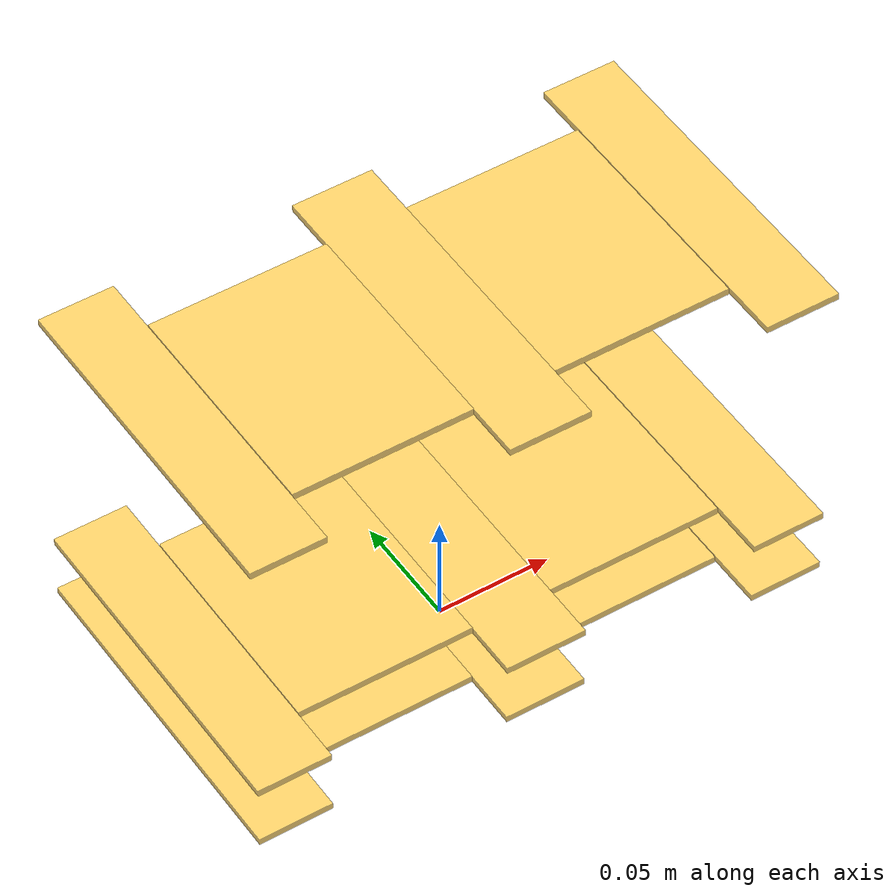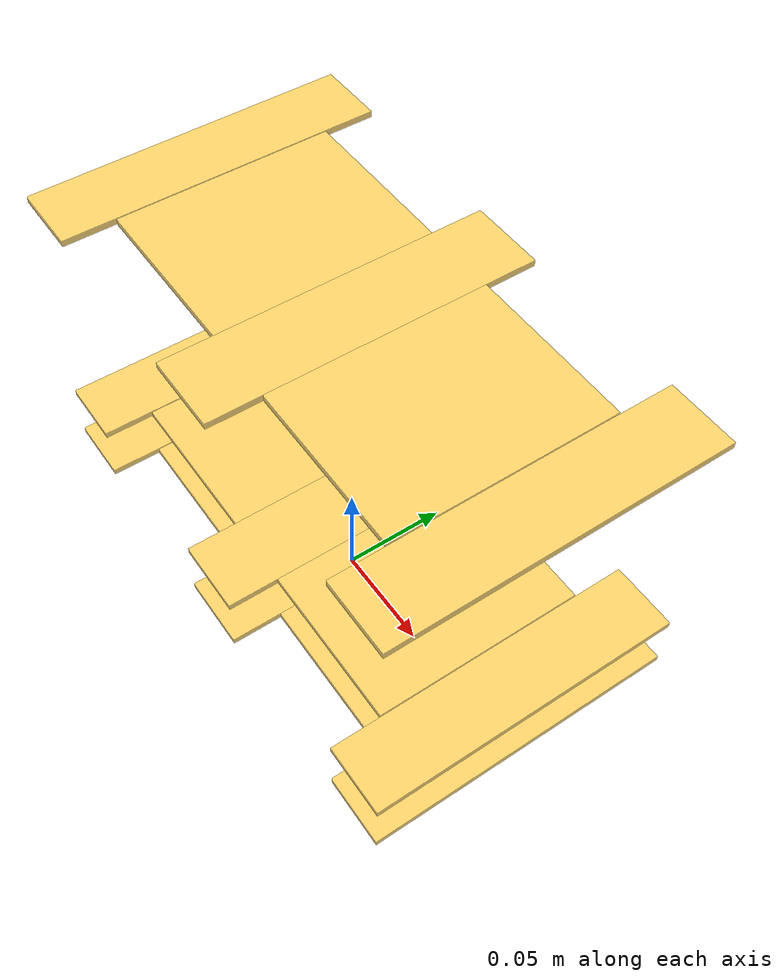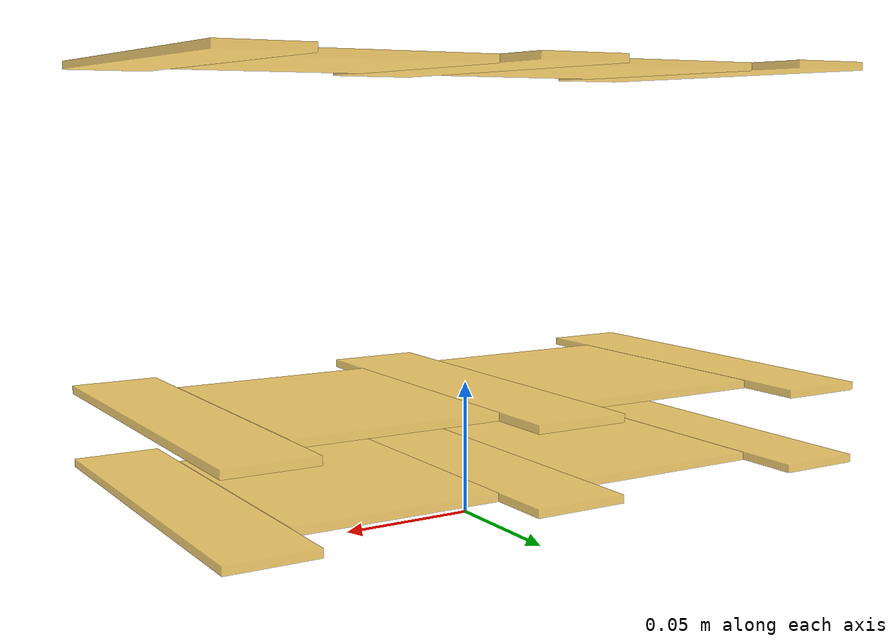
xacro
<?xml version="1.0"?>
<robot xmlns:xacro="http://www.ros.org/wiki/xacro" name="robot">

    <xacro:include filename="inertial_macros.xacro" />

    <material name="NavyBlue">
        <color rgba="0.0 0.0 0.5 1.0" />
    </material>

    <material name="WoodYellow">
        <color rgba="1.0 0.8 0.3 0.8" />
    </material>

    <material name="BlackWheel">
        <color rgba="0.0 0.0 0.0 1.0" />
    </material>

    <material name="Red">
        <color rgba="0.1 0.0 0.0 1.0" />
    </material>

    <material name="White">
        <color rgba="0.9 0.9 0.9 1.0" />
    </material>

    <material name="AbsWhite">
        <color rgba="1 1 1 1.0" />
    </material>

    <material name="Grey">
        <color rgba="0.7 0.7 0.7 1.0" />
    </material>

    <material name="DarkGold">
        <color rgba="0.8 0.6 0.2 1.0" />
    </material>
    <material name="DarkGreen">
        <color rgba="0.0 0.3 0.0 1.0" />
    </material>

    <link name="base_link">

    </link>

    <!-- BASE_FOOTPRINT LINK -->

    <joint name="base_footprint_joint" type="fixed">
        <parent link="base_link" />
        <child link="base_footprint" />
        <origin xyz="0 0 0" rpy="0 0 0" />
    </joint>

    <link name="base_footprint">
    </link>

    <!-- |                                    Chassis                                      | -->

    <!-- Chassis Macro !-->
    <xacro:macro name="chassis" params="postfix">
        <link name="chassis_${postfix}">
            <visual>
                <geometry>
                    <box size="0.032 0.148 0.003" />
                </geometry>
                <origin xyz="-0.111 0 0.02" rpy="0.0 0.0 0.0" />
                <material name="WoodYellow" />
            </visual>
            <visual>
                <geometry>
                    <box size="0.077 0.1 0.003" />
                </geometry>
                <origin xyz="-0.056 0 0.02" rpy="0.0 0.0 0.0" />
                <material name="WoodYellow" />
            </visual>
            <visual>
                <geometry>
                    <box size="0.035 0.148 0.003" />
                </geometry>
                <origin xyz="0 0 0.02" rpy="0.0 0.0 0.0" />
                <material name="WoodYellow" />
            </visual>
            <visual>
                <geometry>
                    <box size="0.077 0.1 0.003" />
                </geometry>
                <origin xyz="0.056 0 0.02" rpy="0.0 0.0 0.0" />
                <material name="WoodYellow" />
            </visual>
            <visual>
                <geometry>
                    <box size="0.032 0.148 0.003" />
                </geometry>
                <origin xyz="0.111 0 0.02" rpy="0.0 0.0 0.0" />
                <material name="WoodYellow" />
            </visual>

            <collision>
                <geometry>
                    <box size="0.032 0.148 0.003" />
                </geometry>
                <origin xyz="-0.111 0 0.02" rpy="0.0 0.0 0.0" />
            </collision>

            <collision>
                <geometry>
                    <box size="0.077 0.1 0.003" />
                </geometry>
                <origin xyz="-0.056 0 0.02" rpy="0.0 0.0 0.0" />
            </collision>

            <collision>
                <geometry>
                    <box size="0.035 0.148 0.003" />
                </geometry>
                <origin xyz="0 0 0.02" rpy="0.0 0.0 0.0" />
            </collision>

            <collision>
                <geometry>
                    <box size="0.077 0.1 0.003" />
                </geometry>
                <origin xyz="0.056 0 0.02" rpy="0.0 0.0 0.0" />
            </collision>

            <collision>
                <geometry>
                    <box size="0.032 0.148 0.003" />
                </geometry>
                <origin xyz="0.111 0 0.02" rpy="0.0 0.0 0.0" />
            </collision>

            <xacro:inertial_box mass="0.064" x="0.25" y="0.148" z="0.003">
                <origin xyz="0 0 0.04" rpy="0 0 0" />
            </xacro:inertial_box>
        </link>
    </xacro:macro>

    <!-- Chassis bottom !-->
    <xacro:chassis postfix="bottom" />
    <!-- Chassis mid !-->
    <xacro:chassis postfix="mid" />
    <!-- Chassis top !-->
    <xacro:chassis postfix="top" />

    <!-- Chassis bottom !-->
    <joint name="chassis_bottom_joint" type="fixed">
        <parent link="base_link" />
        <child link="chassis_bottom" />
        <origin xyz="0 0 0" />
    </joint>

    <!-- Chassis mid !-->
    <joint name="chassis_mid_joint" type="fixed">
        <parent link="base_link" />
        <child link="chassis_mid" />
        <origin xyz="0.0 0.0 0.028" />
    </joint>

    <!-- Chassis top !-->
    <joint name="chassis_top_joint" type="fixed">
        <parent link="base_link" />
        <child link="chassis_top" />
        <origin xyz="0.00 0.00 0.148" />
    </joint>

</robot>
